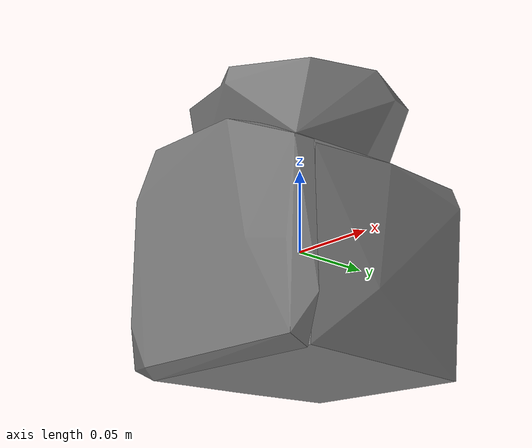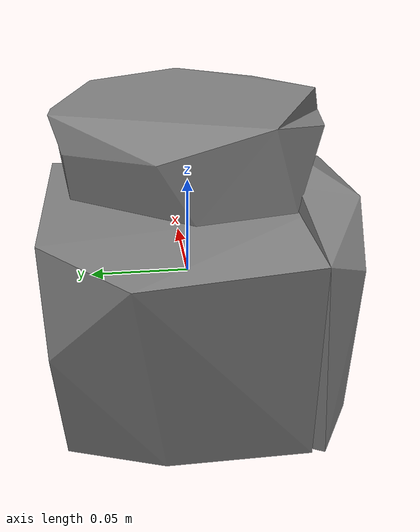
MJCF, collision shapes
<mujoco model="a_colored_wood_blocks">
  <compiler angle="radian" />

  <asset>
    <mesh name="a_colored_wood_blocks_visual_mesh" file="a_colored_wood_blocks/textured.obj" />
    <mesh name="a_colored_wood_blocks_collision_mesh_0" file="a_colored_wood_blocks/textured_coacd_0.stl" />
    <mesh name="a_colored_wood_blocks_collision_mesh_1" file="a_colored_wood_blocks/textured_coacd_1.stl" />
    <mesh name="a_colored_wood_blocks_collision_mesh_2" file="a_colored_wood_blocks/textured_coacd_2.stl" />
    <mesh name="a_colored_wood_blocks_collision_mesh_3" file="a_colored_wood_blocks/textured_coacd_3.stl" />
    <texture name="a_colored_wood_blocks_texture" type="2d" file="a_colored_wood_blocks/texture_map.png" />
    <material name="a_colored_wood_blocks_material" texture="a_colored_wood_blocks_texture" />
  </asset>

  <worldbody>
    <body name="a_colored_wood_blocks" pos="0 0 0" euler="0 0 0">
      <freejoint name="a_colored_wood_blocks_joint" />
      <geom name="a_colored_wood_blocks_visual_geom" type="mesh" mesh="a_colored_wood_blocks_visual_mesh" material="a_colored_wood_blocks_material" pos="-0.02119015620537026 -0.008545373467665459 -0.07390911070766724" euler="0 0 0" contype="0" conaffinity="0" group="0" />
      <geom name="a_colored_wood_blocks_collision_geom_0" type="mesh" mesh="a_colored_wood_blocks_collision_mesh_0" pos="-0.02119015620537026 -0.008545373467665459 -0.07390911070766724" euler="0 0 0" contype="1" conaffinity="1" group="3" />
      <geom name="a_colored_wood_blocks_collision_geom_1" type="mesh" mesh="a_colored_wood_blocks_collision_mesh_1" pos="-0.02119015620537026 -0.008545373467665459 -0.07390911070766724" euler="0 0 0" contype="1" conaffinity="1" group="3" />
      <geom name="a_colored_wood_blocks_collision_geom_2" type="mesh" mesh="a_colored_wood_blocks_collision_mesh_2" pos="-0.02119015620537026 -0.008545373467665459 -0.07390911070766724" euler="0 0 0" contype="1" conaffinity="1" group="3" />
      <geom name="a_colored_wood_blocks_collision_geom_3" type="mesh" mesh="a_colored_wood_blocks_collision_mesh_3" pos="-0.02119015620537026 -0.008545373467665459 -0.07390911070766724" euler="0 0 0" contype="1" conaffinity="1" group="3" />
      <inertial pos="0 0 0" euler="0 0 0" mass="0.0108" diaginertia="0.001 0.001 0.001" />
    </body>
  </worldbody>
</mujoco>
